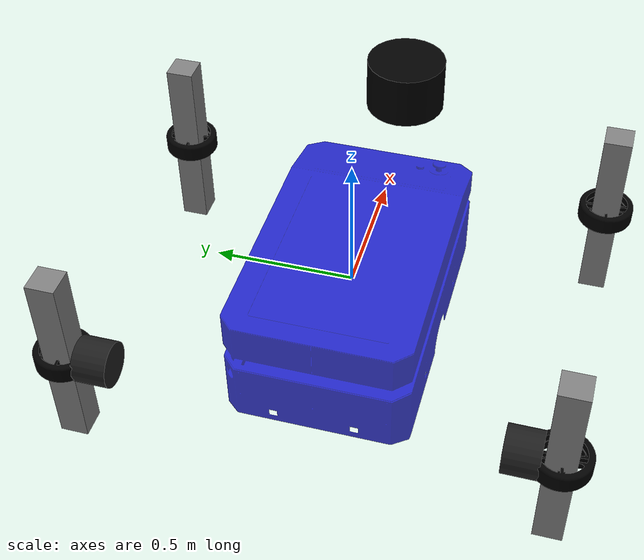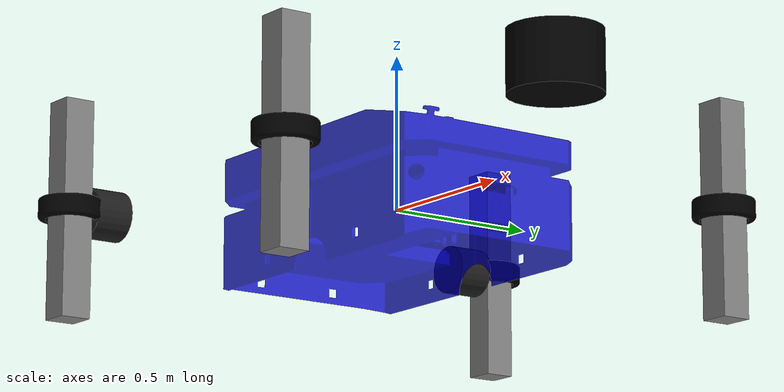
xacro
<?xml version="1.0" ?>

<robot name="robot" xmlns:xacro="http://www.ros.org/wiki/xacro">
    <xacro:include filename="$(find robot_description)/urdf/robot.gazebo" />
    <xacro:property name="PI" value="3.1415926535"/>

    <material name="blue">
        <color rgba="0 0 0.8 0.8"/>
    </material>

    <material name="black">
        <color rgba="0 0 0 1"/>
    </material>

    <material name="grey">
        <color rgba="0.5 0.5 0.5 1"/>
    </material>

    <!-- Link - chassis (Model Body) -->
    <link name="link_chassis">
        <inertial>
            <mass value="10" />
            <origin xyz="0 0 0.3" rpy="0 0 0" />
            <inertia ixx="1.5417" ixy="0" ixz="0" iyy="3.467" iyz="0" izz="4.742" />
        </inertial>

        <collision>
            <geometry>
                <mesh filename="package://robot_description/meshes/chassis.stl" />
            </geometry>
        </collision>

        <visual>
            <geometry>
                <mesh filename="package://robot_description/meshes/chassis.stl" />
            </geometry>
            <material name="blue"/>
        </visual>
    </link>

    <!-- Joint - chassis / Wheel -->

    <joint name="joint_left_steer" type="continuous">
        <origin rpy="0 0 0" xyz="0.6 0.83 0" />
        <child link="link_left_steer" />
        <parent link="link_chassis" />
        <axis rpy="0 0 0" xyz="0 0 1" />
        <limit effort="10000" velocity="1000" />
        <joint_properties damping="1.0" friction="1.0" />
    </joint>

    <joint name="joint_right_steer" type="continuous">
        <origin rpy="0 0 0" xyz="0.6 -0.83 0" />
        <child link="link_right_steer" />
        <parent link="link_chassis" />
        <axis rpy="0 0 0" xyz="0 0 1" />
        <limit effort="10000" velocity="1000" />
        <joint_properties damping="1.0" friction="1.0" />
    </joint>

    <joint name="joint_chassis_front_left_wheel" type="continuous">
        <origin rpy="0 0 0" xyz="0 0 0" />
        <child link="link_front_left_wheel" />
        <parent link="link_left_steer" />
        <axis rpy="0 0 0" xyz="0 1 0" />
        <limit effort="10000" velocity="1000" />
        <joint_properties damping="1.0" friction="1.0" />
    </joint>

    <joint name="joint_chassis_front_right_wheel" type="continuous">
        <origin rpy="0 0 0" xyz="0 0 0" />
        <child link="link_front_right_wheel" />
        <parent link="link_right_steer" />
        <axis rpy="0 0 0" xyz="0 1 0" />
        <limit effort="10000" velocity="1000" />
        <joint_properties damping="1.0" friction="1.0" />
    </joint>

    <joint name="joint_chassis_left_wheel" type="continuous">
        <origin rpy="0 0 0" xyz="-0.6 0.65 0" />
        <child link="link_left_wheel" />
        <parent link="link_chassis" />
        <axis rpy="0 0 0" xyz="0 1 0" />
        <limit effort="10000" velocity="1000" />
        <joint_properties damping="1.0" friction="1.0" />
    </joint>
    <joint name="joint_chassis_right_wheel" type="continuous">
        <origin rpy="0 0 0" xyz="-0.6 -0.65 0" />
        <child link="link_right_wheel" />
        <parent link="link_chassis" />
        <axis rpy="0 0 0" xyz="0 1 0" />
        <limit effort="10000" velocity="1000" />
        <joint_properties damping="1.0" friction="1.0" />
    </joint>

    <link name="link_left_steer">
        <inertial>
            <mass value="1" />
            <origin xyz="0 0 0" rpy="0 0 0" />
            <inertia ixx="0" ixy="0" ixz="0" iyy="0" iyz="0" izz="0"/>
        </inertial>
    </link>
    <link name="link_right_steer">
        <inertial>
            <mass value="1" />
            <origin xyz="0 0 0" rpy="0 0 0" />
            <inertia ixx="0" ixy="0" ixz="0" iyy="0" iyz="0" izz="0"/>
        </inertial>
    </link>

    <link name="link_front_left_wheel">
        <inertial>
            <mass value="1" />
            <origin xyz="0 0 0" rpy="0 0 0" />
            <inertia ixx="0.002526666666667" ixy="0" ixz="0" iyy="0.002526666666667" iyz="0" izz="0.005"/>
        </inertial>

            <!-- Wheel -->
        <collision>
            <origin rpy="${PI/2} 0 0" xyz="0 0 0" />
            <geometry>
                <mesh filename="package://robot_description/meshes/wheel.stl" />
            </geometry>
        </collision>
        <visual>
            <origin rpy="${PI/2} 0 0" xyz="0 0 0" />
            <geometry>
                <mesh filename="package://robot_description/meshes/wheel.stl" />
            </geometry>
            <material name="black"/>
        </visual>

        <visual>
            <origin rpy="0 0 0" xyz="0 0 0" />
            <geometry>
                <box size="0.1 0.1 0.7" />
            </geometry>
            <material name="grey"/>
        </visual>
    </link>
    <link name="link_front_right_wheel">
        <inertial>
            <mass value="1" />
            <origin xyz="0 0 0" rpy="0 0 0" />
            <inertia ixx="0.002526666666667" ixy="0" ixz="0" iyy="0.002526666666667" iyz="0" izz="0.005"/>
        </inertial>

            <!-- Wheel -->
        <collision>
            <origin rpy="${PI/2} 0 0" xyz="0 0 0" />
            <geometry>
                <mesh filename="package://robot_description/meshes/wheel.stl" />
            </geometry>
        </collision>
        <visual>
            <origin rpy="${PI/2} 0 0" xyz="0 0 0" />
            <geometry>
                <mesh filename="package://robot_description/meshes/wheel.stl" />
            </geometry>
            <material name="black"/>
        </visual>

        <visual>
            <origin rpy="0 0 0" xyz="0 0 0" />
            <geometry>
                <box size="0.1 0.1 0.7" />
            </geometry>
            <material name="grey"/>
        </visual>
    </link>

    <!-- Link - left wheel -->
    <link name="link_left_wheel">
        <inertial>
            <mass value="1" />
            <origin xyz="0 0 0" rpy="0 0 0" />
            <inertia ixx="0.002526666666667" ixy="0" ixz="0" iyy="0.002526666666667" iyz="0" izz="0.005"/>
        </inertial>

            <!-- Wheel -->
        <collision>
            <origin rpy="${PI/2} 0 0" xyz="0 0.18 0" />
            <geometry>
                <mesh filename="package://robot_description/meshes/wheel.stl" />
            </geometry>
        </collision>
        <visual>
            <origin rpy="${PI/2} 0 0" xyz="0 0.18 0" />
            <geometry>
                <mesh filename="package://robot_description/meshes/wheel.stl" />
            </geometry>
            <material name="black"/>
        </visual>

        <visual>
            <origin rpy="0 0 0" xyz="0 0.18 0" />
            <geometry>
                <box size="0.1 0.1 0.7" />
            </geometry>
            <material name="grey"/>
        </visual>

            <!-- Shaft -->
        <collision>
            <origin rpy="${PI/2} 0 0" xyz="0 0.06 0" />
            <geometry>
                <cylinder length="0.12" radius="0.08"/>
            </geometry>
        </collision>
        <visual>
            <origin rpy="${PI/2} 0 0" xyz="0 0.06 0" />
            <geometry>
                <cylinder length="0.12" radius="0.08"/>
            </geometry>
        </visual>
    </link>
    <link name="link_right_wheel">
        <inertial>
            <mass value="1" />
            <origin xyz="0 0 0" rpy="0 0 0" />
            <inertia ixx="0.002526666666667" ixy="0" ixz="0" iyy="0.002526666666667" iyz="0" izz="0.005"/>
        </inertial>

            <!-- Wheel -->
        <collision>
            <origin rpy="${PI/2} 0 0" xyz="0 -0.18 0" />
            <geometry>
                <mesh filename="package://robot_description/meshes/wheel.stl" />
            </geometry>
        </collision>
        <visual>
            <origin rpy="${PI/2} 0 0" xyz="0 -0.18 0" />
            <geometry>
                <mesh filename="package://robot_description/meshes/wheel.stl" />
            </geometry>
            <material name="black"/>
        </visual>

        <visual>
            <origin rpy="0 0 0" xyz="0 -0.18 0" />
            <geometry>
                <box size="0.1 0.1 0.7" />
            </geometry>
            <material name="grey"/>
        </visual>

            <!-- Shaft -->
        <collision>
            <origin rpy="${PI/2} 0 0" xyz="0 -0.06 0" />
            <geometry>
                <cylinder length="0.12" radius="0.08"/>
            </geometry>
        </collision>
        <visual>
            <origin rpy="${PI/2} 0 0" xyz="0 -0.06 0" />
            <geometry>
                <cylinder length="0.12" radius="0.08"/>
            </geometry>
        </visual>
    </link>

    <!-- Gazebo tags - Laser scan -->
    <gazebo reference="joint_laser_scan_chassis">
        <preserveFixedJoint>true</preserveFixedJoint>
    </gazebo>
    <gazebo reference="link_laser_scan">
        <material>Gazebo/DarkGrey</material>
    </gazebo>
    <!-- Laser scan -->
    <joint name="joint_laser_scan_chassis" type="fixed">
        <origin rpy="0 0 0" xyz="0.8 0 0.3" />
        <child link="link_laser_scan" />
        <parent link="link_chassis" />
        <joint_properties damping="1.0" friction="1.0" />
    </joint>
    <link name="link_laser_scan">
        <inertial>
            <origin xyz="0 0 0" rpy="0 0 0" />
            <mass value="0.5" />
            <inertia ixx="0.000252666666667" ixy="0" ixz="0" iyy="0.000252666666667" iyz="0" izz="0.0005"/>
        </inertial>
        <visual>
            <origin xyz="0 0 0" rpy="0 0 0" />
            <geometry>
                <cylinder radius="0.15" length="0.20"/>
            </geometry>
            <material name="black"/>
        </visual>
        <collision>
            <origin xyz="0 0 0" rpy="0 0 0"/>
            <geometry>
                <cylinder radius="0.15" length="0.20"/>
            </geometry>
        </collision>
    </link>

    <transmission name="tran_wheel1">
        <type>transmission_interface/SimpleTransmission</type>
        <joint name="joint_chassis_left_wheel">
            <hardwareInterface>hardware_interface/EffortJointInterface</hardwareInterface>
        </joint>
        <actuator name="actuator_wheel1">
            <hardwareInterface>hardware_interface/EffortJointInterface</hardwareInterface>
            <mechanicalReduction>1</mechanicalReduction>
        </actuator>
    </transmission>

    <transmission name="tran_wheel2">
        <type>transmission_interface/SimpleTransmission</type>
        <joint name="joint_chassis_right_wheel">
            <hardwareInterface>hardware_interface/EffortJointInterface</hardwareInterface>
        </joint>
        <actuator name="actuator_wheel2">
            <hardwareInterface>hardware_interface/EffortJointInterface</hardwareInterface>
            <mechanicalReduction>1</mechanicalReduction>
        </actuator>
    </transmission>

    <transmission name="tran_wheel_f1">
        <type>transmission_interface/SimpleTransmission</type>
        <joint name="joint_chassis_front_left_wheel">
            <hardwareInterface>hardware_interface/EffortJointInterface</hardwareInterface>
        </joint>
        <actuator name="actuator_wheel_f1">
            <hardwareInterface>hardware_interface/EffortJointInterface</hardwareInterface>
            <mechanicalReduction>1</mechanicalReduction>
        </actuator>
    </transmission>

    <transmission name="tran_wheel_f2">
        <type>transmission_interface/SimpleTransmission</type>
        <joint name="joint_chassis_front_right_wheel">
            <hardwareInterface>hardware_interface/EffortJointInterface</hardwareInterface>
        </joint>
        <actuator name="actuator_wheel_f2">
            <hardwareInterface>hardware_interface/EffortJointInterface</hardwareInterface>
            <mechanicalReduction>1</mechanicalReduction>
        </actuator>
    </transmission>
    <transmission name="tran_steer1">
        <type>transmission_interface/SimpleTransmission</type>
        <joint name="joint_left_steer">
            <hardwareInterface>hardware_interface/EffortJointInterface</hardwareInterface>
        </joint>
        <actuator name="actuator_steer_f1">
            <hardwareInterface>hardware_interface/EffortJointInterface</hardwareInterface>
            <mechanicalReduction>1</mechanicalReduction>
        </actuator>
    </transmission>

    <transmission name="tran_steer2">
        <type>transmission_interface/SimpleTransmission</type>
        <joint name="joint_right_steer">
            <hardwareInterface>hardware_interface/EffortJointInterface</hardwareInterface>
        </joint>
        <actuator name="actuator_steer_f2">
            <hardwareInterface>hardware_interface/EffortJointInterface</hardwareInterface>
            <mechanicalReduction>1</mechanicalReduction>
        </actuator>
    </transmission>
</robot>
